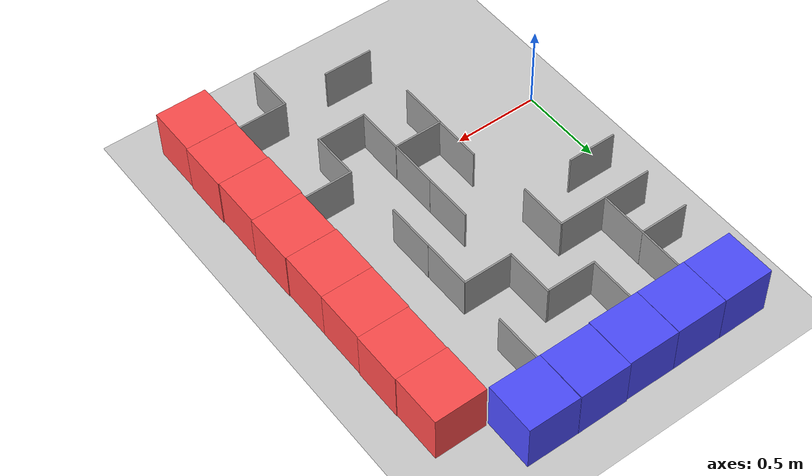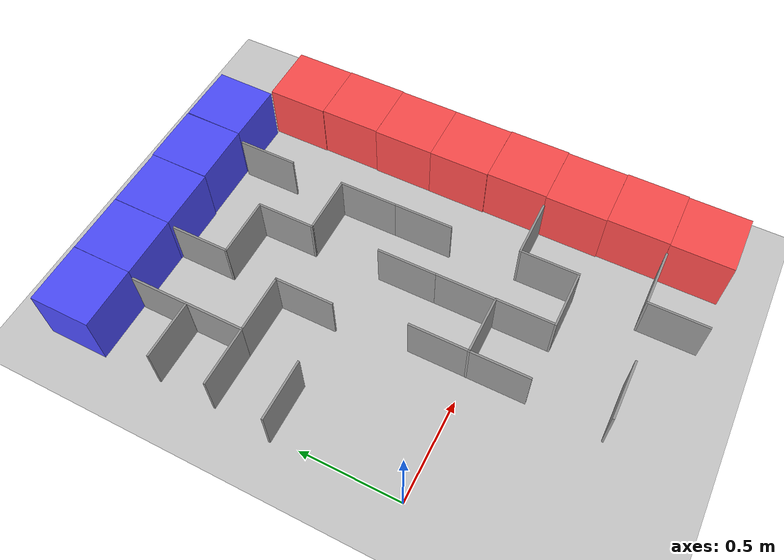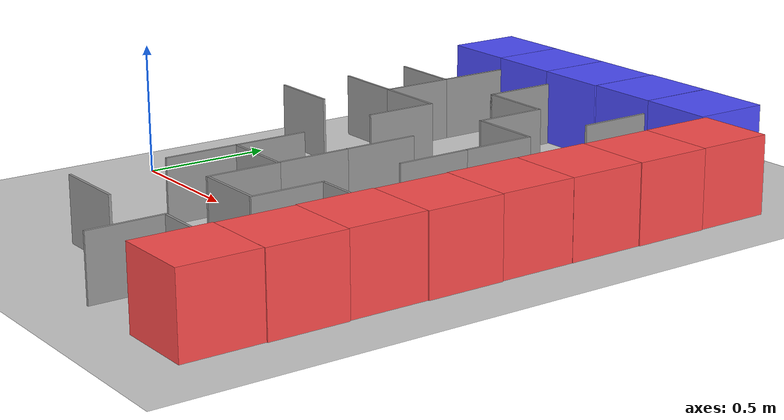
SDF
<sdf version="1.7">
 <world name="default">
  <model name="ground_plane">
   <static>1</static>
   <link name="link">
    <collision name="collision">
     <geometry><plane><normal>0 0 1</normal><size>100 100</size></plane></geometry>
     <surface><friction><ode><mu>100</mu><mu2>50</mu2></ode></friction></surface>
    </collision>
    <visual name="visual">
     <cast_shadows>0</cast_shadows>
     <geometry><plane><normal>0 0 1</normal><size>100 100</size></plane></geometry>
     <material>
      <script><uri>file://media/materials/scripts/gazebo.material</uri><name>Gazebo/Grey</name></script>
     </material>
    </visual>
   </link>
  </model>
  <model name="Box_Red">
   <link name="link_0">
    <inertial>
     <mass>1</mass>
     <inertia>
      <ixx>0.166667</ixx>
      <ixy>0</ixy>
      <ixz>0</ixz>
      <iyy>0.166667</iyy>
      <iyz>0</iyz>
      <izz>0.166667</izz>
     </inertia>
    </inertial>
    <visual name="visual">
     <geometry><box><size>0.3 0.3 0.3</size></box></geometry>
     <material>
      <lighting>1</lighting>
      <script><uri>file://media/materials/scripts/gazebo.material</uri><name>Gazebo/Grey</name></script>
      <ambient>1 0.3 0.3 1</ambient>
      <diffuse>0.7 0.7 0.7 1</diffuse>
      <specular>0.01 0.01 0.01 1</specular>
      <emissive>0 0 0 1</emissive>
      <shader type="vertex"><normal_map>__default__</normal_map></shader>
     </material>
    </visual>
    <collision name="collision">
     <geometry><box><size>0.3 0.3 0.3</size></box></geometry>
     <surface>
      <friction>
       <ode><mu>1</mu><mu2>1</mu2><fdir1>0 0 0</fdir1><slip1>0</slip1><slip2>0</slip2></ode>
       <torsional>
        <coefficient>1</coefficient>
        <patch_radius>0</patch_radius>
        <surface_radius>0</surface_radius>
        <use_patch_radius>1</use_patch_radius>
        <ode><slip>0</slip></ode>
       </torsional>
      </friction>
      <bounce><restitution_coefficient>0</restitution_coefficient><threshold>1e+06</threshold></bounce>
      <contact>
       <collide_without_contact>0</collide_without_contact>
       <collide_without_contact_bitmask>1</collide_without_contact_bitmask>
       <collide_bitmask>1</collide_bitmask>
       <ode>
        <soft_cfm>0</soft_cfm>
        <soft_erp>0.2</soft_erp>
        <kp>1e+13</kp>
        <kd>1</kd>
        <max_vel>0.01</max_vel>
        <min_depth>0</min_depth>
       </ode>
       <bullet>
        <split_impulse>1</split_impulse>
        <split_impulse_penetration_threshold>-0.01</split_impulse_penetration_threshold>
        <soft_cfm>0</soft_cfm>
        <soft_erp>0.2</soft_erp>
        <kp>1e+13</kp>
        <kd>1</kd>
       </bullet>
      </contact>
     </surface>
    </collision>
   </link>
   <static>0</static>
   <pose>1.65636 1.36 0.15 0 -0 -4.7e-05</pose>
  </model>
  <model name="Box_Red_clone">
   <link name="link_0">
    <inertial>
     <mass>1</mass>
     <inertia>
      <ixx>0.166667</ixx>
      <ixy>0</ixy>
      <ixz>0</ixz>
      <iyy>0.166667</iyy>
      <iyz>0</iyz>
      <izz>0.166667</izz>
     </inertia>
    </inertial>
    <visual name="visual">
     <geometry><box><size>0.3 0.3 0.3</size></box></geometry>
     <material>
      <lighting>1</lighting>
      <script><uri>file://media/materials/scripts/gazebo.material</uri><name>Gazebo/Grey</name></script>
      <ambient>1 0.3 0.3 1</ambient>
      <diffuse>0.7 0.7 0.7 1</diffuse>
      <specular>0.01 0.01 0.01 1</specular>
      <emissive>0 0 0 1</emissive>
      <shader type="vertex"><normal_map>__default__</normal_map></shader>
     </material>
    </visual>
    <collision name="collision">
     <geometry><box><size>0.3 0.3 0.3</size></box></geometry>
     <surface>
      <friction>
       <ode><mu>1</mu><mu2>1</mu2><fdir1>0 0 0</fdir1><slip1>0</slip1><slip2>0</slip2></ode>
       <torsional>
        <coefficient>1</coefficient>
        <patch_radius>0</patch_radius>
        <surface_radius>0</surface_radius>
        <use_patch_radius>1</use_patch_radius>
        <ode><slip>0</slip></ode>
       </torsional>
      </friction>
      <bounce><restitution_coefficient>0</restitution_coefficient><threshold>1e+06</threshold></bounce>
      <contact>
       <collide_without_contact>0</collide_without_contact>
       <collide_without_contact_bitmask>1</collide_without_contact_bitmask>
       <collide_bitmask>1</collide_bitmask>
       <ode>
        <soft_cfm>0</soft_cfm>
        <soft_erp>0.2</soft_erp>
        <kp>1e+13</kp>
        <kd>1</kd>
        <max_vel>0.01</max_vel>
        <min_depth>0</min_depth>
       </ode>
       <bullet>
        <split_impulse>1</split_impulse>
        <split_impulse_penetration_threshold>-0.01</split_impulse_penetration_threshold>
        <soft_cfm>0</soft_cfm>
        <soft_erp>0.2</soft_erp>
        <kp>1e+13</kp>
        <kd>1</kd>
       </bullet>
      </contact>
     </surface>
    </collision>
   </link>
   <static>0</static>
   <pose>1.6595 1.05998 0.15 0 -0 8.8e-05</pose>
  </model>
  <model name="Box_Red_clone_0">
   <link name="link_0">
    <inertial>
     <mass>1</mass>
     <inertia>
      <ixx>0.166667</ixx>
      <ixy>0</ixy>
      <ixz>0</ixz>
      <iyy>0.166667</iyy>
      <iyz>0</iyz>
      <izz>0.166667</izz>
     </inertia>
    </inertial>
    <visual name="visual">
     <geometry><box><size>0.3 0.3 0.3</size></box></geometry>
     <material>
      <lighting>1</lighting>
      <script><uri>file://media/materials/scripts/gazebo.material</uri><name>Gazebo/Grey</name></script>
      <ambient>1 0.3 0.3 1</ambient>
      <diffuse>0.7 0.7 0.7 1</diffuse>
      <specular>0.01 0.01 0.01 1</specular>
      <emissive>0 0 0 1</emissive>
      <shader type="vertex"><normal_map>__default__</normal_map></shader>
     </material>
    </visual>
    <collision name="collision">
     <geometry><box><size>0.3 0.3 0.3</size></box></geometry>
     <surface>
      <friction>
       <ode><mu>1</mu><mu2>1</mu2><fdir1>0 0 0</fdir1><slip1>0</slip1><slip2>0</slip2></ode>
       <torsional>
        <coefficient>1</coefficient>
        <patch_radius>0</patch_radius>
        <surface_radius>0</surface_radius>
        <use_patch_radius>1</use_patch_radius>
        <ode><slip>0</slip></ode>
       </torsional>
      </friction>
      <bounce><restitution_coefficient>0</restitution_coefficient><threshold>1e+06</threshold></bounce>
      <contact>
       <collide_without_contact>0</collide_without_contact>
       <collide_without_contact_bitmask>1</collide_without_contact_bitmask>
       <collide_bitmask>1</collide_bitmask>
       <ode>
        <soft_cfm>0</soft_cfm>
        <soft_erp>0.2</soft_erp>
        <kp>1e+13</kp>
        <kd>1</kd>
        <max_vel>0.01</max_vel>
        <min_depth>0</min_depth>
       </ode>
       <bullet>
        <split_impulse>1</split_impulse>
        <split_impulse_penetration_threshold>-0.01</split_impulse_penetration_threshold>
        <soft_cfm>0</soft_cfm>
        <soft_erp>0.2</soft_erp>
        <kp>1e+13</kp>
        <kd>1</kd>
       </bullet>
      </contact>
     </surface>
    </collision>
   </link>
   <static>0</static>
   <pose>1.65601 0.759963 0.15 0 -0 5.9e-05</pose>
  </model>
  <model name="Box_Red_clone_1">
   <link name="link_0">
    <inertial>
     <mass>1</mass>
     <inertia>
      <ixx>0.166667</ixx>
      <ixy>0</ixy>
      <ixz>0</ixz>
      <iyy>0.166667</iyy>
      <iyz>0</iyz>
      <izz>0.166667</izz>
     </inertia>
    </inertial>
    <visual name="visual">
     <geometry><box><size>0.3 0.3 0.3</size></box></geometry>
     <material>
      <lighting>1</lighting>
      <script><uri>file://media/materials/scripts/gazebo.material</uri><name>Gazebo/Grey</name></script>
      <ambient>1 0.3 0.3 1</ambient>
      <diffuse>0.7 0.7 0.7 1</diffuse>
      <specular>0.01 0.01 0.01 1</specular>
      <emissive>0 0 0 1</emissive>
      <shader type="vertex"><normal_map>__default__</normal_map></shader>
     </material>
    </visual>
    <collision name="collision">
     <geometry><box><size>0.3 0.3 0.3</size></box></geometry>
     <surface>
      <friction>
       <ode><mu>1</mu><mu2>1</mu2><fdir1>0 0 0</fdir1><slip1>0</slip1><slip2>0</slip2></ode>
       <torsional>
        <coefficient>1</coefficient>
        <patch_radius>0</patch_radius>
        <surface_radius>0</surface_radius>
        <use_patch_radius>1</use_patch_radius>
        <ode><slip>0</slip></ode>
       </torsional>
      </friction>
      <bounce><restitution_coefficient>0</restitution_coefficient><threshold>1e+06</threshold></bounce>
      <contact>
       <collide_without_contact>0</collide_without_contact>
       <collide_without_contact_bitmask>1</collide_without_contact_bitmask>
       <collide_bitmask>1</collide_bitmask>
       <ode>
        <soft_cfm>0</soft_cfm>
        <soft_erp>0.2</soft_erp>
        <kp>1e+13</kp>
        <kd>1</kd>
        <max_vel>0.01</max_vel>
        <min_depth>0</min_depth>
       </ode>
       <bullet>
        <split_impulse>1</split_impulse>
        <split_impulse_penetration_threshold>-0.01</split_impulse_penetration_threshold>
        <soft_cfm>0</soft_cfm>
        <soft_erp>0.2</soft_erp>
        <kp>1e+13</kp>
        <kd>1</kd>
       </bullet>
      </contact>
     </surface>
    </collision>
   </link>
   <static>0</static>
   <pose>1.65528 0.459952 0.15 0 -0 0.0001</pose>
  </model>
  <model name="Box_Red_clone_2">
   <link name="link_0">
    <inertial>
     <mass>1</mass>
     <inertia>
      <ixx>0.166667</ixx>
      <ixy>0</ixy>
      <ixz>0</ixz>
      <iyy>0.166667</iyy>
      <iyz>0</iyz>
      <izz>0.166667</izz>
     </inertia>
    </inertial>
    <visual name="visual">
     <geometry><box><size>0.3 0.3 0.3</size></box></geometry>
     <material>
      <lighting>1</lighting>
      <script><uri>file://media/materials/scripts/gazebo.material</uri><name>Gazebo/Grey</name></script>
      <ambient>1 0.3 0.3 1</ambient>
      <diffuse>0.7 0.7 0.7 1</diffuse>
      <specular>0.01 0.01 0.01 1</specular>
      <emissive>0 0 0 1</emissive>
      <shader type="vertex"><normal_map>__default__</normal_map></shader>
     </material>
    </visual>
    <collision name="collision">
     <geometry><box><size>0.3 0.3 0.3</size></box></geometry>
     <surface>
      <friction>
       <ode><mu>1</mu><mu2>1</mu2><fdir1>0 0 0</fdir1><slip1>0</slip1><slip2>0</slip2></ode>
       <torsional>
        <coefficient>1</coefficient>
        <patch_radius>0</patch_radius>
        <surface_radius>0</surface_radius>
        <use_patch_radius>1</use_patch_radius>
        <ode><slip>0</slip></ode>
       </torsional>
      </friction>
      <bounce><restitution_coefficient>0</restitution_coefficient><threshold>1e+06</threshold></bounce>
      <contact>
       <collide_without_contact>0</collide_without_contact>
       <collide_without_contact_bitmask>1</collide_without_contact_bitmask>
       <collide_bitmask>1</collide_bitmask>
       <ode>
        <soft_cfm>0</soft_cfm>
        <soft_erp>0.2</soft_erp>
        <kp>1e+13</kp>
        <kd>1</kd>
        <max_vel>0.01</max_vel>
        <min_depth>0</min_depth>
       </ode>
       <bullet>
        <split_impulse>1</split_impulse>
        <split_impulse_penetration_threshold>-0.01</split_impulse_penetration_threshold>
        <soft_cfm>0</soft_cfm>
        <soft_erp>0.2</soft_erp>
        <kp>1e+13</kp>
        <kd>1</kd>
       </bullet>
      </contact>
     </surface>
    </collision>
   </link>
   <static>0</static>
   <pose>1.65948 0.159881 0.15 0 -0 0.000522</pose>
  </model>
  <model name="Box_Red_clone_3">
   <link name="link_0">
    <inertial>
     <mass>1</mass>
     <inertia>
      <ixx>0.166667</ixx>
      <ixy>0</ixy>
      <ixz>0</ixz>
      <iyy>0.166667</iyy>
      <iyz>0</iyz>
      <izz>0.166667</izz>
     </inertia>
    </inertial>
    <visual name="visual">
     <geometry><box><size>0.3 0.3 0.3</size></box></geometry>
     <material>
      <lighting>1</lighting>
      <script><uri>file://media/materials/scripts/gazebo.material</uri><name>Gazebo/Grey</name></script>
      <ambient>1 0.3 0.3 1</ambient>
      <diffuse>0.7 0.7 0.7 1</diffuse>
      <specular>0.01 0.01 0.01 1</specular>
      <emissive>0 0 0 1</emissive>
      <shader type="vertex"><normal_map>__default__</normal_map></shader>
     </material>
    </visual>
    <collision name="collision">
     <geometry><box><size>0.3 0.3 0.3</size></box></geometry>
     <surface>
      <friction>
       <ode><mu>1</mu><mu2>1</mu2><fdir1>0 0 0</fdir1><slip1>0</slip1><slip2>0</slip2></ode>
       <torsional>
        <coefficient>1</coefficient>
        <patch_radius>0</patch_radius>
        <surface_radius>0</surface_radius>
        <use_patch_radius>1</use_patch_radius>
        <ode><slip>0</slip></ode>
       </torsional>
      </friction>
      <bounce><restitution_coefficient>0</restitution_coefficient><threshold>1e+06</threshold></bounce>
      <contact>
       <collide_without_contact>0</collide_without_contact>
       <collide_without_contact_bitmask>1</collide_without_contact_bitmask>
       <collide_bitmask>1</collide_bitmask>
       <ode>
        <soft_cfm>0</soft_cfm>
        <soft_erp>0.2</soft_erp>
        <kp>1e+13</kp>
        <kd>1</kd>
        <max_vel>0.01</max_vel>
        <min_depth>0</min_depth>
       </ode>
       <bullet>
        <split_impulse>1</split_impulse>
        <split_impulse_penetration_threshold>-0.01</split_impulse_penetration_threshold>
        <soft_cfm>0</soft_cfm>
        <soft_erp>0.2</soft_erp>
        <kp>1e+13</kp>
        <kd>1</kd>
       </bullet>
      </contact>
     </surface>
    </collision>
   </link>
   <static>0</static>
   <pose>1.65506 -0.140171 0.15 0 -0 0.000201</pose>
  </model>
  <model name="Box_Red_clone_4">
   <link name="link_0">
    <inertial>
     <mass>1</mass>
     <inertia>
      <ixx>0.166667</ixx>
      <ixy>0</ixy>
      <ixz>0</ixz>
      <iyy>0.166667</iyy>
      <iyz>0</iyz>
      <izz>0.166667</izz>
     </inertia>
    </inertial>
    <visual name="visual">
     <geometry><box><size>0.3 0.3 0.3</size></box></geometry>
     <material>
      <lighting>1</lighting>
      <script><uri>file://media/materials/scripts/gazebo.material</uri><name>Gazebo/Grey</name></script>
      <ambient>1 0.3 0.3 1</ambient>
      <diffuse>0.7 0.7 0.7 1</diffuse>
      <specular>0.01 0.01 0.01 1</specular>
      <emissive>0 0 0 1</emissive>
      <shader type="vertex"><normal_map>__default__</normal_map></shader>
     </material>
    </visual>
    <collision name="collision">
     <geometry><box><size>0.3 0.3 0.3</size></box></geometry>
     <surface>
      <friction>
       <ode><mu>1</mu><mu2>1</mu2><fdir1>0 0 0</fdir1><slip1>0</slip1><slip2>0</slip2></ode>
       <torsional>
        <coefficient>1</coefficient>
        <patch_radius>0</patch_radius>
        <surface_radius>0</surface_radius>
        <use_patch_radius>1</use_patch_radius>
        <ode><slip>0</slip></ode>
       </torsional>
      </friction>
      <bounce><restitution_coefficient>0</restitution_coefficient><threshold>1e+06</threshold></bounce>
      <contact>
       <collide_without_contact>0</collide_without_contact>
       <collide_without_contact_bitmask>1</collide_without_contact_bitmask>
       <collide_bitmask>1</collide_bitmask>
       <ode>
        <soft_cfm>0</soft_cfm>
        <soft_erp>0.2</soft_erp>
        <kp>1e+13</kp>
        <kd>1</kd>
        <max_vel>0.01</max_vel>
        <min_depth>0</min_depth>
       </ode>
       <bullet>
        <split_impulse>1</split_impulse>
        <split_impulse_penetration_threshold>-0.01</split_impulse_penetration_threshold>
        <soft_cfm>0</soft_cfm>
        <soft_erp>0.2</soft_erp>
        <kp>1e+13</kp>
        <kd>1</kd>
       </bullet>
      </contact>
     </surface>
    </collision>
   </link>
   <static>0</static>
   <pose>1.65976 -0.440197 0.15 0 -0 0.000127</pose>
  </model>
  <model name="Box_Red_clone_5">
   <link name="link_0">
    <inertial>
     <mass>1</mass>
     <inertia>
      <ixx>0.166667</ixx>
      <ixy>0</ixy>
      <ixz>0</ixz>
      <iyy>0.166667</iyy>
      <iyz>0</iyz>
      <izz>0.166667</izz>
     </inertia>
    </inertial>
    <visual name="visual">
     <geometry><box><size>0.3 0.3 0.3</size></box></geometry>
     <material>
      <lighting>1</lighting>
      <script><uri>file://media/materials/scripts/gazebo.material</uri><name>Gazebo/Grey</name></script>
      <ambient>1 0.3 0.3 1</ambient>
      <diffuse>0.7 0.7 0.7 1</diffuse>
      <specular>0.01 0.01 0.01 1</specular>
      <emissive>0 0 0 1</emissive>
      <shader type="vertex"><normal_map>__default__</normal_map></shader>
     </material>
    </visual>
    <collision name="collision">
     <geometry><box><size>0.3 0.3 0.3</size></box></geometry>
     <surface>
      <friction>
       <ode><mu>1</mu><mu2>1</mu2><fdir1>0 0 0</fdir1><slip1>0</slip1><slip2>0</slip2></ode>
       <torsional>
        <coefficient>1</coefficient>
        <patch_radius>0</patch_radius>
        <surface_radius>0</surface_radius>
        <use_patch_radius>1</use_patch_radius>
        <ode><slip>0</slip></ode>
       </torsional>
      </friction>
      <bounce><restitution_coefficient>0</restitution_coefficient><threshold>1e+06</threshold></bounce>
      <contact>
       <collide_without_contact>0</collide_without_contact>
       <collide_without_contact_bitmask>1</collide_without_contact_bitmask>
       <collide_bitmask>1</collide_bitmask>
       <ode>
        <soft_cfm>0</soft_cfm>
        <soft_erp>0.2</soft_erp>
        <kp>1e+13</kp>
        <kd>1</kd>
        <max_vel>0.01</max_vel>
        <min_depth>0</min_depth>
       </ode>
       <bullet>
        <split_impulse>1</split_impulse>
        <split_impulse_penetration_threshold>-0.01</split_impulse_penetration_threshold>
        <soft_cfm>0</soft_cfm>
        <soft_erp>0.2</soft_erp>
        <kp>1e+13</kp>
        <kd>1</kd>
       </bullet>
      </contact>
     </surface>
    </collision>
   </link>
   <static>0</static>
   <pose>1.65527 -0.740271 0.15 0 -0 -0.000112</pose>
  </model>
  <model name="Box_Blue">
   <link name="link_0">
    <inertial>
     <mass>1</mass>
     <inertia>
      <ixx>0.166667</ixx>
      <ixy>0</ixy>
      <ixz>0</ixz>
      <iyy>0.166667</iyy>
      <iyz>0</iyz>
      <izz>0.166667</izz>
     </inertia>
    </inertial>
    <visual name="visual">
     <geometry><box><size>0.3 0.3 0.3</size></box></geometry>
     <material>
      <lighting>1</lighting>
      <script><uri>file://media/materials/scripts/gazebo.material</uri><name>Gazebo/Grey</name></script>
      <ambient>0.3 0.3 1 1</ambient>
      <diffuse>0.7 0.7 0.7 1</diffuse>
      <specular>0.01 0.01 0.01 1</specular>
      <emissive>0 0 0 1</emissive>
      <shader type="vertex"><normal_map>__default__</normal_map></shader>
     </material>
    </visual>
    <collision name="collision">
     <geometry><box><size>0.3 0.3 0.3</size></box></geometry>
     <surface>
      <friction>
       <ode><mu>1</mu><mu2>1</mu2><fdir1>0 0 0</fdir1><slip1>0</slip1><slip2>0</slip2></ode>
       <torsional>
        <coefficient>1</coefficient>
        <patch_radius>0</patch_radius>
        <surface_radius>0</surface_radius>
        <use_patch_radius>1</use_patch_radius>
        <ode><slip>0</slip></ode>
       </torsional>
      </friction>
      <bounce><restitution_coefficient>0</restitution_coefficient><threshold>1e+06</threshold></bounce>
      <contact>
       <collide_without_contact>0</collide_without_contact>
       <collide_without_contact_bitmask>1</collide_without_contact_bitmask>
       <collide_bitmask>1</collide_bitmask>
       <ode>
        <soft_cfm>0</soft_cfm>
        <soft_erp>0.2</soft_erp>
        <kp>1e+13</kp>
        <kd>1</kd>
        <max_vel>0.01</max_vel>
        <min_depth>0</min_depth>
       </ode>
       <bullet>
        <split_impulse>1</split_impulse>
        <split_impulse_penetration_threshold>-0.01</split_impulse_penetration_threshold>
        <soft_cfm>0</soft_cfm>
        <soft_erp>0.2</soft_erp>
        <kp>1e+13</kp>
        <kd>1</kd>
       </bullet>
      </contact>
     </surface>
    </collision>
   </link>
   <static>0</static>
   <pose>1.34453 1.65685 0.15 0 -0 -0.01056</pose>
  </model>
  <model name="Box_Blue_clone">
   <link name="link_0">
    <inertial>
     <mass>1</mass>
     <inertia>
      <ixx>0.166667</ixx>
      <ixy>0</ixy>
      <ixz>0</ixz>
      <iyy>0.166667</iyy>
      <iyz>0</iyz>
      <izz>0.166667</izz>
     </inertia>
    </inertial>
    <visual name="visual">
     <geometry><box><size>0.3 0.3 0.3</size></box></geometry>
     <material>
      <lighting>1</lighting>
      <script><uri>file://media/materials/scripts/gazebo.material</uri><name>Gazebo/Grey</name></script>
      <ambient>0.3 0.3 1 1</ambient>
      <diffuse>0.7 0.7 0.7 1</diffuse>
      <specular>0.01 0.01 0.01 1</specular>
      <emissive>0 0 0 1</emissive>
      <shader type="vertex"><normal_map>__default__</normal_map></shader>
     </material>
    </visual>
    <collision name="collision">
     <geometry><box><size>0.3 0.3 0.3</size></box></geometry>
     <surface>
      <friction>
       <ode><mu>1</mu><mu2>1</mu2><fdir1>0 0 0</fdir1><slip1>0</slip1><slip2>0</slip2></ode>
       <torsional>
        <coefficient>1</coefficient>
        <patch_radius>0</patch_radius>
        <surface_radius>0</surface_radius>
        <use_patch_radius>1</use_patch_radius>
        <ode><slip>0</slip></ode>
       </torsional>
      </friction>
      <bounce><restitution_coefficient>0</restitution_coefficient><threshold>1e+06</threshold></bounce>
      <contact>
       <collide_without_contact>0</collide_without_contact>
       <collide_without_contact_bitmask>1</collide_without_contact_bitmask>
       <collide_bitmask>1</collide_bitmask>
       <ode>
        <soft_cfm>0</soft_cfm>
        <soft_erp>0.2</soft_erp>
        <kp>1e+13</kp>
        <kd>1</kd>
        <max_vel>0.01</max_vel>
        <min_depth>0</min_depth>
       </ode>
       <bullet>
        <split_impulse>1</split_impulse>
        <split_impulse_penetration_threshold>-0.01</split_impulse_penetration_threshold>
        <soft_cfm>0</soft_cfm>
        <soft_erp>0.2</soft_erp>
        <kp>1e+13</kp>
        <kd>1</kd>
       </bullet>
      </contact>
     </surface>
    </collision>
   </link>
   <static>0</static>
   <pose>1.04253 1.65863 0.15 0 -0 0.000822</pose>
  </model>
  <model name="Box_Blue_clone_0">
   <link name="link_0">
    <inertial>
     <mass>1</mass>
     <inertia>
      <ixx>0.166667</ixx>
      <ixy>0</ixy>
      <ixz>0</ixz>
      <iyy>0.166667</iyy>
      <iyz>0</iyz>
      <izz>0.166667</izz>
     </inertia>
    </inertial>
    <visual name="visual">
     <geometry><box><size>0.3 0.3 0.3</size></box></geometry>
     <material>
      <lighting>1</lighting>
      <script><uri>file://media/materials/scripts/gazebo.material</uri><name>Gazebo/Grey</name></script>
      <ambient>0.3 0.3 1 1</ambient>
      <diffuse>0.7 0.7 0.7 1</diffuse>
      <specular>0.01 0.01 0.01 1</specular>
      <emissive>0 0 0 1</emissive>
      <shader type="vertex"><normal_map>__default__</normal_map></shader>
     </material>
    </visual>
    <collision name="collision">
     <geometry><box><size>0.3 0.3 0.3</size></box></geometry>
     <surface>
      <friction>
       <ode><mu>1</mu><mu2>1</mu2><fdir1>0 0 0</fdir1><slip1>0</slip1><slip2>0</slip2></ode>
       <torsional>
        <coefficient>1</coefficient>
        <patch_radius>0</patch_radius>
        <surface_radius>0</surface_radius>
        <use_patch_radius>1</use_patch_radius>
        <ode><slip>0</slip></ode>
       </torsional>
      </friction>
      <bounce><restitution_coefficient>0</restitution_coefficient><threshold>1e+06</threshold></bounce>
      <contact>
       <collide_without_contact>0</collide_without_contact>
       <collide_without_contact_bitmask>1</collide_without_contact_bitmask>
       <collide_bitmask>1</collide_bitmask>
       <ode>
        <soft_cfm>0</soft_cfm>
        <soft_erp>0.2</soft_erp>
        <kp>1e+13</kp>
        <kd>1</kd>
        <max_vel>0.01</max_vel>
        <min_depth>0</min_depth>
       </ode>
       <bullet>
        <split_impulse>1</split_impulse>
        <split_impulse_penetration_threshold>-0.01</split_impulse_penetration_threshold>
        <soft_cfm>0</soft_cfm>
        <soft_erp>0.2</soft_erp>
        <kp>1e+13</kp>
        <kd>1</kd>
       </bullet>
      </contact>
     </surface>
    </collision>
   </link>
   <static>0</static>
   <pose>0.741465 1.6543 0.15 0 0 -0.004997</pose>
  </model>
  <model name="Box_Blue_clone_1">
   <link name="link_0">
    <inertial>
     <mass>1</mass>
     <inertia>
      <ixx>0.166667</ixx>
      <ixy>0</ixy>
      <ixz>0</ixz>
      <iyy>0.166667</iyy>
      <iyz>0</iyz>
      <izz>0.166667</izz>
     </inertia>
    </inertial>
    <visual name="visual">
     <geometry><box><size>0.3 0.3 0.3</size></box></geometry>
     <material>
      <lighting>1</lighting>
      <script><uri>file://media/materials/scripts/gazebo.material</uri><name>Gazebo/Grey</name></script>
      <ambient>0.3 0.3 1 1</ambient>
      <diffuse>0.7 0.7 0.7 1</diffuse>
      <specular>0.01 0.01 0.01 1</specular>
      <emissive>0 0 0 1</emissive>
      <shader type="vertex"><normal_map>__default__</normal_map></shader>
     </material>
    </visual>
    <collision name="collision">
     <geometry><box><size>0.3 0.3 0.3</size></box></geometry>
     <surface>
      <friction>
       <ode><mu>1</mu><mu2>1</mu2><fdir1>0 0 0</fdir1><slip1>0</slip1><slip2>0</slip2></ode>
       <torsional>
        <coefficient>1</coefficient>
        <patch_radius>0</patch_radius>
        <surface_radius>0</surface_radius>
        <use_patch_radius>1</use_patch_radius>
        <ode><slip>0</slip></ode>
       </torsional>
      </friction>
      <bounce><restitution_coefficient>0</restitution_coefficient><threshold>1e+06</threshold></bounce>
      <contact>
       <collide_without_contact>0</collide_without_contact>
       <collide_without_contact_bitmask>1</collide_without_contact_bitmask>
       <collide_bitmask>1</collide_bitmask>
       <ode>
        <soft_cfm>0</soft_cfm>
        <soft_erp>0.2</soft_erp>
        <kp>1e+13</kp>
        <kd>1</kd>
        <max_vel>0.01</max_vel>
        <min_depth>0</min_depth>
       </ode>
       <bullet>
        <split_impulse>1</split_impulse>
        <split_impulse_penetration_threshold>-0.01</split_impulse_penetration_threshold>
        <soft_cfm>0</soft_cfm>
        <soft_erp>0.2</soft_erp>
        <kp>1e+13</kp>
        <kd>1</kd>
       </bullet>
      </contact>
     </surface>
    </collision>
   </link>
   <static>0</static>
   <pose>0.44073 1.65509 0.15 0 0 -9.5e-05</pose>
  </model>
  <model name="Box_Blue_clone_2">
   <link name="link_0">
    <inertial>
     <mass>1</mass>
     <inertia>
      <ixx>0.166667</ixx>
      <ixy>0</ixy>
      <ixz>0</ixz>
      <iyy>0.166667</iyy>
      <iyz>0</iyz>
      <izz>0.166667</izz>
     </inertia>
    </inertial>
    <visual name="visual">
     <geometry><box><size>0.3 0.3 0.3</size></box></geometry>
     <material>
      <lighting>1</lighting>
      <script><uri>file://media/materials/scripts/gazebo.material</uri><name>Gazebo/Grey</name></script>
      <ambient>0.3 0.3 1 1</ambient>
      <diffuse>0.7 0.7 0.7 1</diffuse>
      <specular>0.01 0.01 0.01 1</specular>
      <emissive>0 0 0 1</emissive>
      <shader type="vertex"><normal_map>__default__</normal_map></shader>
     </material>
    </visual>
    <collision name="collision">
     <geometry><box><size>0.3 0.3 0.3</size></box></geometry>
     <surface>
      <friction>
       <ode><mu>1</mu><mu2>1</mu2><fdir1>0 0 0</fdir1><slip1>0</slip1><slip2>0</slip2></ode>
       <torsional>
        <coefficient>1</coefficient>
        <patch_radius>0</patch_radius>
        <surface_radius>0</surface_radius>
        <use_patch_radius>1</use_patch_radius>
        <ode><slip>0</slip></ode>
       </torsional>
      </friction>
      <bounce><restitution_coefficient>0</restitution_coefficient><threshold>1e+06</threshold></bounce>
      <contact>
       <collide_without_contact>0</collide_without_contact>
       <collide_without_contact_bitmask>1</collide_without_contact_bitmask>
       <collide_bitmask>1</collide_bitmask>
       <ode>
        <soft_cfm>0</soft_cfm>
        <soft_erp>0.2</soft_erp>
        <kp>1e+13</kp>
        <kd>1</kd>
        <max_vel>0.01</max_vel>
        <min_depth>0</min_depth>
       </ode>
       <bullet>
        <split_impulse>1</split_impulse>
        <split_impulse_penetration_threshold>-0.01</split_impulse_penetration_threshold>
        <soft_cfm>0</soft_cfm>
        <soft_erp>0.2</soft_erp>
        <kp>1e+13</kp>
        <kd>1</kd>
       </bullet>
      </contact>
     </surface>
    </collision>
   </link>
   <static>0</static>
   <pose>0.140382 1.65549 0.15 0 -0 0.002212</pose>
  </model>
  <model name="Maze_I_H_clone">
   <pose>1.18792 1.34673 0 0 -0 0</pose>
   <link name="Wall_0">
    <collision name="Wall_0_Collision">
     <geometry><box><size>0.294 0.01 0.25</size></box></geometry>
     <pose>0 0 0.125 0 -0 0</pose>
    </collision>
    <visual name="Wall_0_Visual">
     <pose>0 0 0.125 0 -0 0</pose>
     <geometry><box><size>0.294 0.01 0.25</size></box></geometry>
     <material>
      <script><uri>file://media/materials/scripts/gazebo.material</uri><name>Gazebo/Grey</name></script>
      <ambient>1 1 1 1</ambient>
     </material>
     <meta><layer>0</layer></meta>
    </visual>
    <pose>0 0 0 0 -0 1.5708</pose>
   </link>
   <static>1</static>
  </model>
  <model name="Maze_L_RB_clone">
   <pose>0.748164 1.35333 0 0 -0 0</pose>
   <link name="Wall_0">
    <collision name="Wall_0_Collision">
     <geometry><box><size>0.294 0.01 0.25</size></box></geometry>
     <pose>0 0 0.125 0 -0 0</pose>
    </collision>
    <visual name="Wall_0_Visual">
     <pose>0 0 0.125 0 -0 0</pose>
     <geometry><box><size>0.294 0.01 0.25</size></box></geometry>
     <material>
      <script><uri>file://media/materials/scripts/gazebo.material</uri><name>Gazebo/Grey</name></script>
      <ambient>1 1 1 1</ambient>
     </material>
     <meta><layer>0</layer></meta>
    </visual>
    <pose>0 -0.142 0 0 -0 0</pose>
   </link>
   <link name="Wall_2">
    <collision name="Wall_2_Collision">
     <geometry><box><size>0.294 0.01 0.25</size></box></geometry>
     <pose>0 0 0.125 0 -0 0</pose>
    </collision>
    <visual name="Wall_2_Visual">
     <pose>0 0 0.125 0 -0 0</pose>
     <geometry><box><size>0.294 0.01 0.25</size></box></geometry>
     <material>
      <script><uri>file://media/materials/scripts/gazebo.material</uri><name>Gazebo/Grey</name></script>
      <ambient>1 1 1 1</ambient>
     </material>
     <meta><layer>0</layer></meta>
    </visual>
    <pose>-0.142 0 0 0 -0 1.5708</pose>
   </link>
   <static>1</static>
  </model>
  <model name="Maze_L_RB_clone_0">
   <pose>1.03964 1.06941 0 0 -0 0</pose>
   <link name="Wall_0">
    <collision name="Wall_0_Collision">
     <geometry><box><size>0.294 0.01 0.25</size></box></geometry>
     <pose>0 0 0.125 0 -0 0</pose>
    </collision>
    <visual name="Wall_0_Visual">
     <pose>0 0 0.125 0 -0 0</pose>
     <geometry><box><size>0.294 0.01 0.25</size></box></geometry>
     <material>
      <script><uri>file://media/materials/scripts/gazebo.material</uri><name>Gazebo/Grey</name></script>
      <ambient>1 1 1 1</ambient>
     </material>
     <meta><layer>0</layer></meta>
    </visual>
    <pose>0 -0.142 0 0 -0 0</pose>
   </link>
   <link name="Wall_2">
    <collision name="Wall_2_Collision">
     <geometry><box><size>0.294 0.01 0.25</size></box></geometry>
     <pose>0 0 0.125 0 -0 0</pose>
    </collision>
    <visual name="Wall_2_Visual">
     <pose>0 0 0.125 0 -0 0</pose>
     <geometry><box><size>0.294 0.01 0.25</size></box></geometry>
     <material>
      <script><uri>file://media/materials/scripts/gazebo.material</uri><name>Gazebo/Grey</name></script>
      <ambient>1 1 1 1</ambient>
     </material>
     <meta><layer>0</layer></meta>
    </visual>
    <pose>-0.142 0 0 0 -0 1.5708</pose>
   </link>
   <static>1</static>
  </model>
  <model name="Maze_I_H_clone_0">
   <pose>1.18406 0.784556 0 0 -0 0</pose>
   <link name="Wall_0">
    <collision name="Wall_0_Collision">
     <geometry><box><size>0.294 0.01 0.25</size></box></geometry>
     <pose>0 0 0.125 0 -0 0</pose>
    </collision>
    <visual name="Wall_0_Visual">
     <pose>0 0 0.125 0 -0 0</pose>
     <geometry><box><size>0.294 0.01 0.25</size></box></geometry>
     <material>
      <script><uri>file://media/materials/scripts/gazebo.material</uri><name>Gazebo/Grey</name></script>
      <ambient>1 1 1 1</ambient>
     </material>
     <meta><layer>0</layer></meta>
    </visual>
    <pose>0 0 0 0 -0 1.5708</pose>
   </link>
   <static>1</static>
  </model>
  <model name="Maze_I_H_clone_1">
   <pose>1.18478 0.490963 0 0 -0 0</pose>
   <link name="Wall_0">
    <collision name="Wall_0_Collision">
     <geometry><box><size>0.294 0.01 0.25</size></box></geometry>
     <pose>0 0 0.125 0 -0 0</pose>
    </collision>
    <visual name="Wall_0_Visual">
     <pose>0 0 0.125 0 -0 0</pose>
     <geometry><box><size>0.294 0.01 0.25</size></box></geometry>
     <material>
      <script><uri>file://media/materials/scripts/gazebo.material</uri><name>Gazebo/Grey</name></script>
      <ambient>1 1 1 1</ambient>
     </material>
     <meta><layer>0</layer></meta>
    </visual>
    <pose>0 0 0 0 -0 1.5708</pose>
   </link>
   <static>1</static>
  </model>
  <model name="Maze_L_LB_clone">
   <pose>1.35035 -0.132332 0 0 -0 0</pose>
   <link name="Wall_0">
    <collision name="Wall_0_Collision">
     <geometry><box><size>0.294 0.01 0.25</size></box></geometry>
     <pose>0 0 0.125 0 -0 0</pose>
    </collision>
    <visual name="Wall_0_Visual">
     <pose>0 0 0.125 0 -0 0</pose>
     <geometry><box><size>0.294 0.01 0.25</size></box></geometry>
     <material>
      <script><uri>file://media/materials/scripts/gazebo.material</uri><name>Gazebo/Grey</name></script>
      <ambient>1 1 1 1</ambient>
     </material>
     <meta><layer>0</layer></meta>
    </visual>
    <pose>0 0.142 0 0 -0 0</pose>
   </link>
   <link name="Wall_2">
    <collision name="Wall_2_Collision">
     <geometry><box><size>0.294 0.01 0.25</size></box></geometry>
     <pose>0 0 0.125 0 -0 0</pose>
    </collision>
    <visual name="Wall_2_Visual">
     <pose>0 0 0.125 0 -0 0</pose>
     <geometry><box><size>0.294 0.01 0.25</size></box></geometry>
     <material>
      <script><uri>file://media/materials/scripts/gazebo.material</uri><name>Gazebo/Grey</name></script>
      <ambient>1 1 1 1</ambient>
     </material>
     <meta><layer>0</layer></meta>
    </visual>
    <pose>-0.142 0 0 0 0 -1.5708</pose>
   </link>
   <static>1</static>
  </model>
  <model name="Maze_L_RB_clone_1">
   <pose>1.06451 -0.131951 0 0 -0 0</pose>
   <link name="Wall_0">
    <collision name="Wall_0_Collision">
     <geometry><box><size>0.294 0.01 0.25</size></box></geometry>
     <pose>0 0 0.125 0 -0 0</pose>
    </collision>
    <visual name="Wall_0_Visual">
     <pose>0 0 0.125 0 -0 0</pose>
     <geometry><box><size>0.294 0.01 0.25</size></box></geometry>
     <material>
      <script><uri>file://media/materials/scripts/gazebo.material</uri><name>Gazebo/Grey</name></script>
      <ambient>1 1 1 1</ambient>
     </material>
     <meta><layer>0</layer></meta>
    </visual>
    <pose>0 -0.142 0 0 -0 0</pose>
   </link>
   <link name="Wall_2">
    <collision name="Wall_2_Collision">
     <geometry><box><size>0.294 0.01 0.25</size></box></geometry>
     <pose>0 0 0.125 0 -0 0</pose>
    </collision>
    <visual name="Wall_2_Visual">
     <pose>0 0 0.125 0 -0 0</pose>
     <geometry><box><size>0.294 0.01 0.25</size></box></geometry>
     <material>
      <script><uri>file://media/materials/scripts/gazebo.material</uri><name>Gazebo/Grey</name></script>
      <ambient>1 1 1 1</ambient>
     </material>
     <meta><layer>0</layer></meta>
    </visual>
    <pose>-0.142 0 0 0 -0 1.5708</pose>
   </link>
   <static>1</static>
  </model>
  <model name="Maze_I_H_clone_2">
   <pose>0.920533 0.155119 0 0 -0 0</pose>
   <link name="Wall_0">
    <collision name="Wall_0_Collision">
     <geometry><box><size>0.294 0.01 0.25</size></box></geometry>
     <pose>0 0 0.125 0 -0 0</pose>
    </collision>
    <visual name="Wall_0_Visual">
     <pose>0 0 0.125 0 -0 0</pose>
     <geometry><box><size>0.294 0.01 0.25</size></box></geometry>
     <material>
      <script><uri>file://media/materials/scripts/gazebo.material</uri><name>Gazebo/Grey</name></script>
      <ambient>1 1 1 1</ambient>
     </material>
     <meta><layer>0</layer></meta>
    </visual>
    <pose>0 0 0 0 -0 1.5708</pose>
   </link>
   <static>1</static>
  </model>
  <model name="Maze_I_H_clone_3">
   <pose>0.920216 0.446457 0 0 -0 0</pose>
   <link name="Wall_0">
    <collision name="Wall_0_Collision">
     <geometry><box><size>0.294 0.01 0.25</size></box></geometry>
     <pose>0 0 0.125 0 -0 0</pose>
    </collision>
    <visual name="Wall_0_Visual">
     <pose>0 0 0.125 0 -0 0</pose>
     <geometry><box><size>0.294 0.01 0.25</size></box></geometry>
     <material>
      <script><uri>file://media/materials/scripts/gazebo.material</uri><name>Gazebo/Grey</name></script>
      <ambient>1 1 1 1</ambient>
     </material>
     <meta><layer>0</layer></meta>
    </visual>
    <pose>0 0 0 0 -0 1.5708</pose>
   </link>
   <static>1</static>
  </model>
  <model name="Maze_I_H_clone_4">
   <pose>0.637555 0.152365 0 0 -0 0</pose>
   <link name="Wall_0">
    <collision name="Wall_0_Collision">
     <geometry><box><size>0.294 0.01 0.25</size></box></geometry>
     <pose>0 0 0.125 0 -0 0</pose>
    </collision>
    <visual name="Wall_0_Visual">
     <pose>0 0 0.125 0 -0 0</pose>
     <geometry><box><size>0.294 0.01 0.25</size></box></geometry>
     <material>
      <script><uri>file://media/materials/scripts/gazebo.material</uri><name>Gazebo/Grey</name></script>
      <ambient>1 1 1 1</ambient>
     </material>
     <meta><layer>0</layer></meta>
    </visual>
    <pose>0 0 0 0 -0 1.5708</pose>
   </link>
   <static>1</static>
  </model>
  <model name="Maze_L_LB_clone_0">
   <pose>0.778988 -0.132321 0 0 -0 0</pose>
   <link name="Wall_0">
    <collision name="Wall_0_Collision">
     <geometry><box><size>0.294 0.01 0.25</size></box></geometry>
     <pose>0 0 0.125 0 -0 0</pose>
    </collision>
    <visual name="Wall_0_Visual">
     <pose>0 0 0.125 0 -0 0</pose>
     <geometry><box><size>0.294 0.01 0.25</size></box></geometry>
     <material>
      <script><uri>file://media/materials/scripts/gazebo.material</uri><name>Gazebo/Grey</name></script>
      <ambient>1 1 1 1</ambient>
     </material>
     <meta><layer>0</layer></meta>
    </visual>
    <pose>0 0.142 0 0 -0 0</pose>
   </link>
   <link name="Wall_2">
    <collision name="Wall_2_Collision">
     <geometry><box><size>0.294 0.01 0.25</size></box></geometry>
     <pose>0 0 0.125 0 -0 0</pose>
    </collision>
    <visual name="Wall_2_Visual">
     <pose>0 0 0.125 0 -0 0</pose>
     <geometry><box><size>0.294 0.01 0.25</size></box></geometry>
     <material>
      <script><uri>file://media/materials/scripts/gazebo.material</uri><name>Gazebo/Grey</name></script>
      <ambient>1 1 1 1</ambient>
     </material>
     <meta><layer>0</layer></meta>
    </visual>
    <pose>-0.142 0 0 0 0 -1.5708</pose>
   </link>
   <static>1</static>
  </model>
  <model name="Maze_L_LB_clone_1">
   <pose>1.34781 -0.734464 0 0 -0 0</pose>
   <link name="Wall_0">
    <collision name="Wall_0_Collision">
     <geometry><box><size>0.294 0.01 0.25</size></box></geometry>
     <pose>0 0 0.125 0 -0 0</pose>
    </collision>
    <visual name="Wall_0_Visual">
     <pose>0 0 0.125 0 -0 0</pose>
     <geometry><box><size>0.294 0.01 0.25</size></box></geometry>
     <material>
      <script><uri>file://media/materials/scripts/gazebo.material</uri><name>Gazebo/Grey</name></script>
      <ambient>1 1 1 1</ambient>
     </material>
     <meta><layer>0</layer></meta>
    </visual>
    <pose>0 0.142 0 0 -0 0</pose>
   </link>
   <link name="Wall_2">
    <collision name="Wall_2_Collision">
     <geometry><box><size>0.294 0.01 0.25</size></box></geometry>
     <pose>0 0 0.125 0 -0 0</pose>
    </collision>
    <visual name="Wall_2_Visual">
     <pose>0 0 0.125 0 -0 0</pose>
     <geometry><box><size>0.294 0.01 0.25</size></box></geometry>
     <material>
      <script><uri>file://media/materials/scripts/gazebo.material</uri><name>Gazebo/Grey</name></script>
      <ambient>1 1 1 1</ambient>
     </material>
     <meta><layer>0</layer></meta>
    </visual>
    <pose>-0.142 0 0 0 0 -1.5708</pose>
   </link>
   <static>1</static>
  </model>
  <model name="Maze_I_V_clone_0">
   <pose>0.765722 -0.640246 0 0 -0 0</pose>
   <link name="Wall_0">
    <collision name="Wall_0_Collision">
     <geometry><box><size>0.294 0.01 0.25</size></box></geometry>
     <pose>0 0 0.125 0 -0 0</pose>
    </collision>
    <visual name="Wall_0_Visual">
     <pose>0 0 0.125 0 -0 0</pose>
     <geometry><box><size>0.294 0.01 0.25</size></box></geometry>
     <material>
      <script><uri>file://media/materials/scripts/gazebo.material</uri><name>Gazebo/Grey</name></script>
      <ambient>1 1 1 1</ambient>
     </material>
     <meta><layer>0</layer></meta>
    </visual>
   </link>
   <static>1</static>
  </model>
  <model name="Maze_L_RU_clone_0">
   <pose>0.150092 1.3551 0 0 -0 0</pose>
   <link name="Wall_11">
    <collision name="Wall_11_Collision">
     <geometry><box><size>0.294 0.01 0.25</size></box></geometry>
     <pose>0 0 0.125 0 -0 0</pose>
    </collision>
    <visual name="Wall_11_Visual">
     <pose>0 0 0.125 0 -0 0</pose>
     <geometry><box><size>0.294 0.01 0.25</size></box></geometry>
     <material>
      <script><uri>file://media/materials/scripts/gazebo.material</uri><name>Gazebo/Grey</name></script>
      <ambient>1 1 1 1</ambient>
     </material>
     <meta><layer>0</layer></meta>
    </visual>
    <pose>0 -0.142 0 0 -0 0</pose>
   </link>
   <link name="Wall_12">
    <collision name="Wall_12_Collision">
     <geometry><box><size>0.294 0.01 0.25</size></box></geometry>
     <pose>0 0 0.125 0 -0 0</pose>
    </collision>
    <visual name="Wall_12_Visual">
     <pose>0 0 0.125 0 -0 0</pose>
     <geometry><box><size>0.294 0.01 0.25</size></box></geometry>
     <material>
      <script><uri>file://media/materials/scripts/gazebo.material</uri><name>Gazebo/Grey</name></script>
      <ambient>1 1 1 1</ambient>
     </material>
     <meta><layer>0</layer></meta>
    </visual>
    <pose>0.142 0 0 0 -0 1.5708</pose>
   </link>
   <static>1</static>
  </model>
  <model name="Maze_L_RU_clone_1">
   <pose>0.150754 1.0698 0 0 -0 0</pose>
   <link name="Wall_11">
    <collision name="Wall_11_Collision">
     <geometry><box><size>0.294 0.01 0.25</size></box></geometry>
     <pose>0 0 0.125 0 -0 0</pose>
    </collision>
    <visual name="Wall_11_Visual">
     <pose>0 0 0.125 0 -0 0</pose>
     <geometry><box><size>0.294 0.01 0.25</size></box></geometry>
     <material>
      <script><uri>file://media/materials/scripts/gazebo.material</uri><name>Gazebo/Grey</name></script>
      <ambient>1 1 1 1</ambient>
     </material>
     <meta><layer>0</layer></meta>
    </visual>
    <pose>0 -0.142 0 0 -0 0</pose>
   </link>
   <link name="Wall_12">
    <collision name="Wall_12_Collision">
     <geometry><box><size>0.294 0.01 0.25</size></box></geometry>
     <pose>0 0 0.125 0 -0 0</pose>
    </collision>
    <visual name="Wall_12_Visual">
     <pose>0 0 0.125 0 -0 0</pose>
     <geometry><box><size>0.294 0.01 0.25</size></box></geometry>
     <material>
      <script><uri>file://media/materials/scripts/gazebo.material</uri><name>Gazebo/Grey</name></script>
      <ambient>1 1 1 1</ambient>
     </material>
     <meta><layer>0</layer></meta>
    </visual>
    <pose>0.142 0 0 0 -0 1.5708</pose>
   </link>
   <static>1</static>
  </model>
  <model name="Maze_L_LU_clone">
   <pose>0.435895 0.785348 0 0 -0 0</pose>
   <link name="Wall_0">
    <collision name="Wall_0_Collision">
     <geometry><box><size>0.294 0.01 0.25</size></box></geometry>
     <pose>0 0 0.125 0 -0 0</pose>
    </collision>
    <visual name="Wall_0_Visual">
     <pose>0 0 0.125 0 -0 0</pose>
     <geometry><box><size>0.294 0.01 0.25</size></box></geometry>
     <material>
      <script><uri>file://media/materials/scripts/gazebo.material</uri><name>Gazebo/Grey</name></script>
      <ambient>1 1 1 1</ambient>
     </material>
     <meta><layer>0</layer></meta>
    </visual>
    <pose>0 0.142 0 0 -0 3.14159</pose>
   </link>
   <link name="Wall_2">
    <collision name="Wall_2_Collision">
     <geometry><box><size>0.294 0.01 0.25</size></box></geometry>
     <pose>0 0 0.125 0 -0 0</pose>
    </collision>
    <visual name="Wall_2_Visual">
     <pose>0 0 0.125 0 -0 0</pose>
     <geometry><box><size>0.294 0.01 0.25</size></box></geometry>
     <material>
      <script><uri>file://media/materials/scripts/gazebo.material</uri><name>Gazebo/Grey</name></script>
      <ambient>1 1 1 1</ambient>
     </material>
     <meta><layer>0</layer></meta>
    </visual>
    <pose>0.142 0 0 0 0 -1.5708</pose>
   </link>
   <static>1</static>
  </model>
  <model name="Maze_I_V_clone_3">
   <pose>0.124272 0.630343 0 0 -0 0</pose>
   <link name="Wall_0">
    <collision name="Wall_0_Collision">
     <geometry><box><size>0.294 0.01 0.25</size></box></geometry>
     <pose>0 0 0.125 0 -0 0</pose>
    </collision>
    <visual name="Wall_0_Visual">
     <pose>0 0 0.125 0 -0 0</pose>
     <geometry><box><size>0.294 0.01 0.25</size></box></geometry>
     <material>
      <script><uri>file://media/materials/scripts/gazebo.material</uri><name>Gazebo/Grey</name></script>
      <ambient>1 1 1 1</ambient>
     </material>
     <meta><layer>0</layer></meta>
    </visual>
   </link>
   <static>1</static>
  </model>
 </world>
</sdf>
